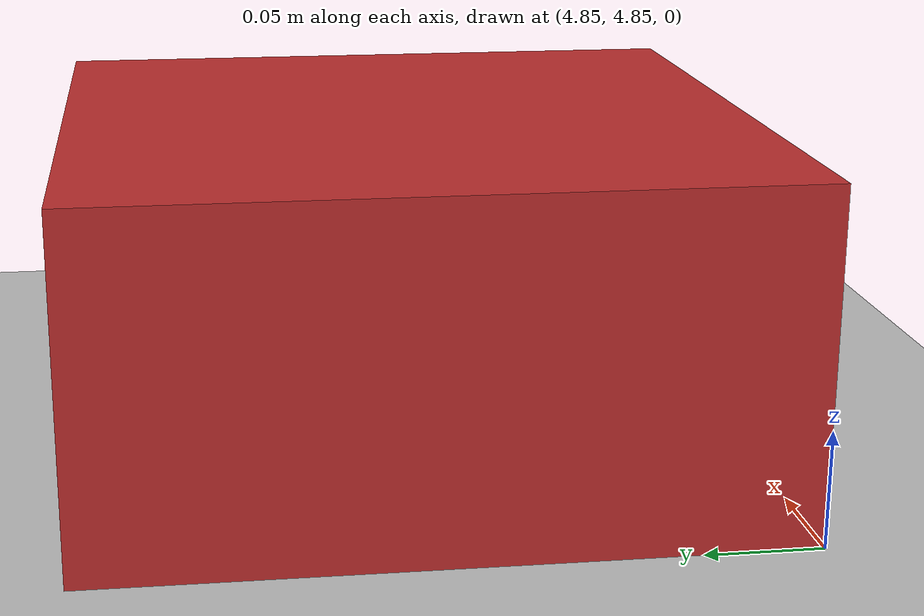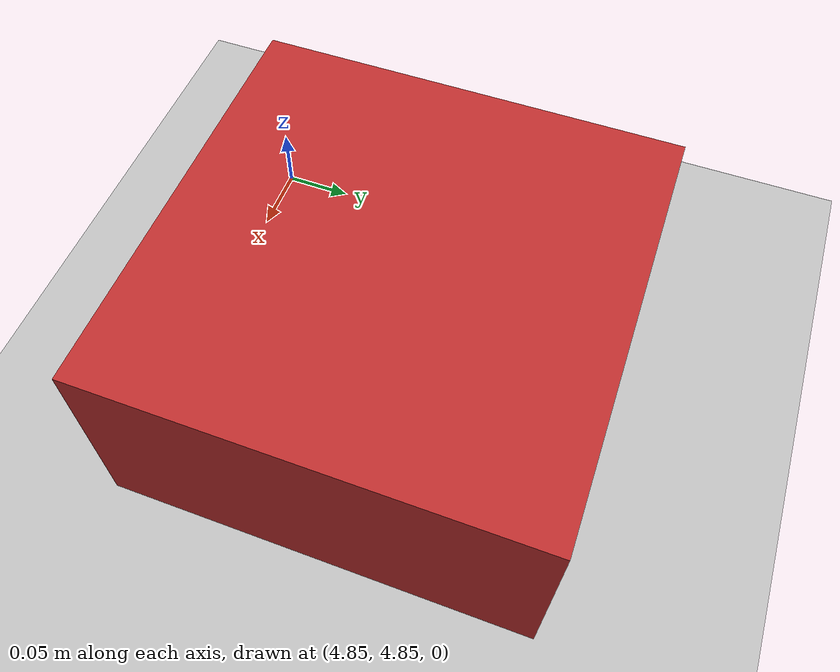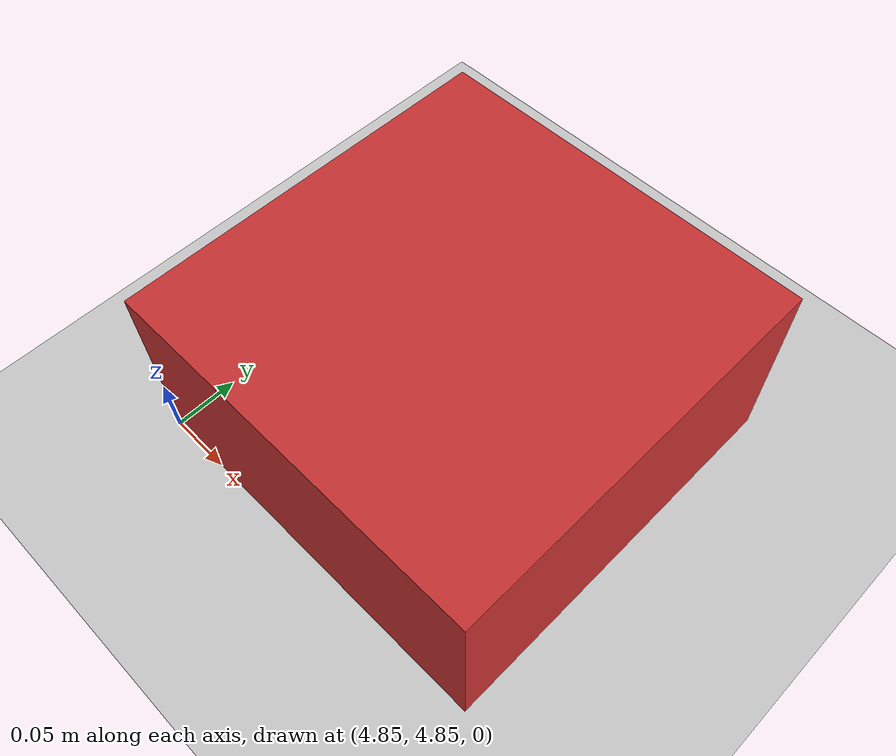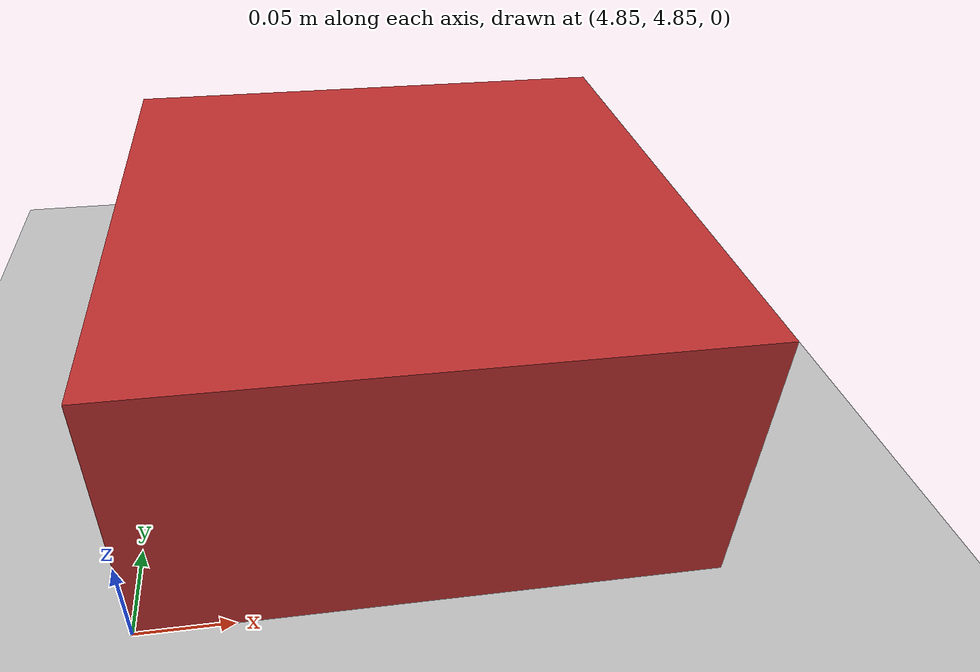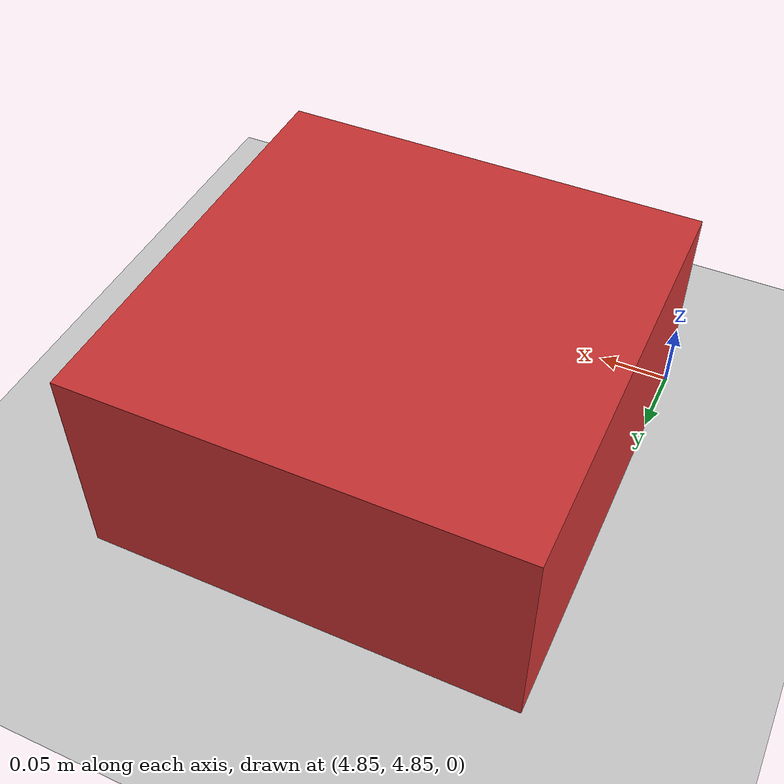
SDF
<?xml version="1.0"?>
<sdf version="1.8">
  <world name="default">
    <physics type="ode">
      <real_time_update_rate>1000.0</real_time_update_rate>
      <max_step_size>0.001</max_step_size>
      <real_time_factor>1</real_time_factor>
      <ode>
        <solver>
          <type>quick</type>
          <iters>150</iters>
          <sor>1.400000</sor>
        </solver>
      </ode>
    </physics>
    <plugin filename="gz-sim-physics-system"
            name="gz::sim::systems::Physics"/>
    <plugin filename="gz-sim-user-commands-system"
            name="gz::sim::systems::UserCommands"/>
    <plugin filename="gz-sim-scene-broadcaster-system"
            name="gz::sim::systems::SceneBroadcaster"/>
    <plugin filename="gz-sim-sensors-system"
            name="gz::sim::systems::Sensors">
      <render_engine>ogre2</render_engine>
    </plugin>
    <plugin filename="gz-sim-imu-system"
            name="gz::sim::systems::Imu"/>

    <include>
      <uri>https://fuel.gazebosim.org/1.0/OpenRobotics/models/Ground Plane</uri>
    </include>
    <include>
      <uri>https://fuel.gazebosim.org/1.0/OpenRobotics/models/Sun</uri>
    </include>

    <!-- The box that robots must lift together -->
    <model name="lift_box">
      <static>true</static>   <!-- set false for real physics lifting -->
      <pose>5 5 0.075 0 0 0</pose>
      <link name="box_link">
        <collision name="collision">
          <geometry>
            <box><size>0.3 0.3 0.15</size></box>
          </geometry>
        </collision>
        <visual name="visual">
          <geometry>
            <box><size>0.3 0.3 0.15</size></box>
          </geometry>
          <material>
            <ambient>0.8 0.2 0.2 1</ambient>
            <diffuse>0.8 0.2 0.2 1</diffuse>
          </material>
        </visual>
        <inertial>
          <mass>1.5</mass>
        </inertial>
      </link>
    </model>

  </world>
</sdf>
